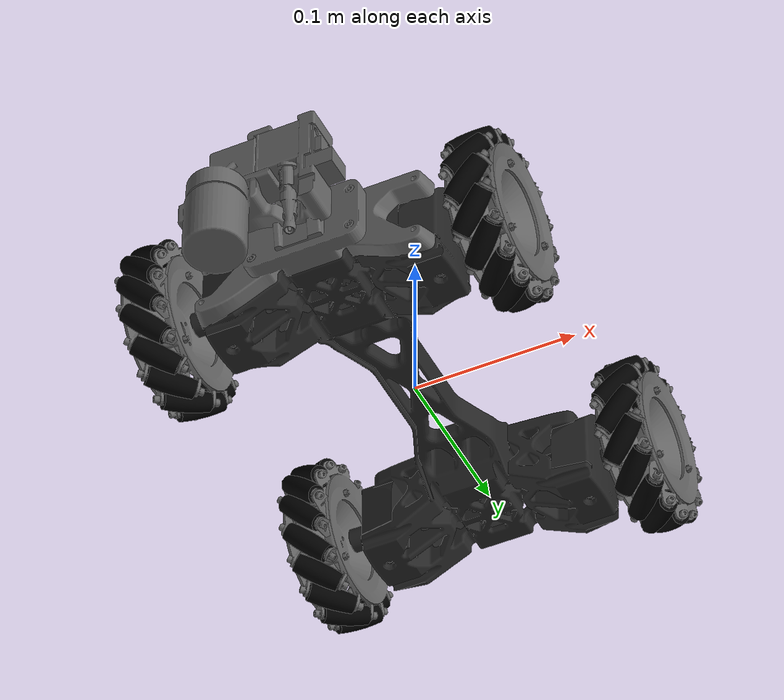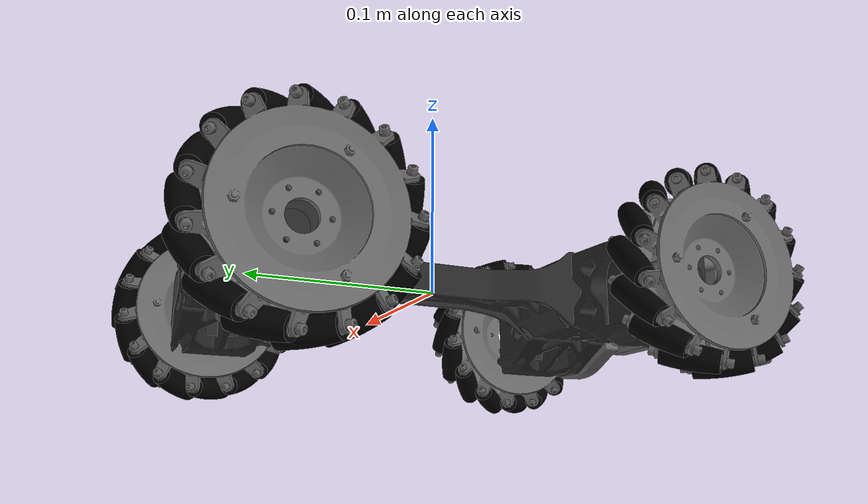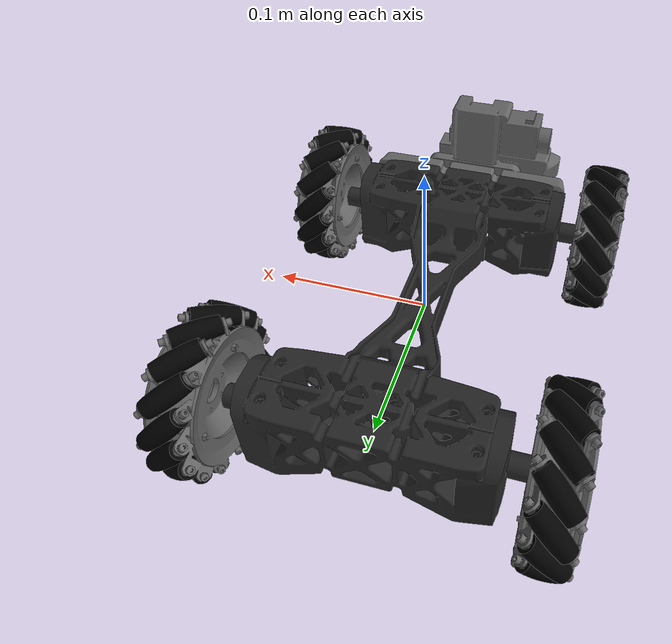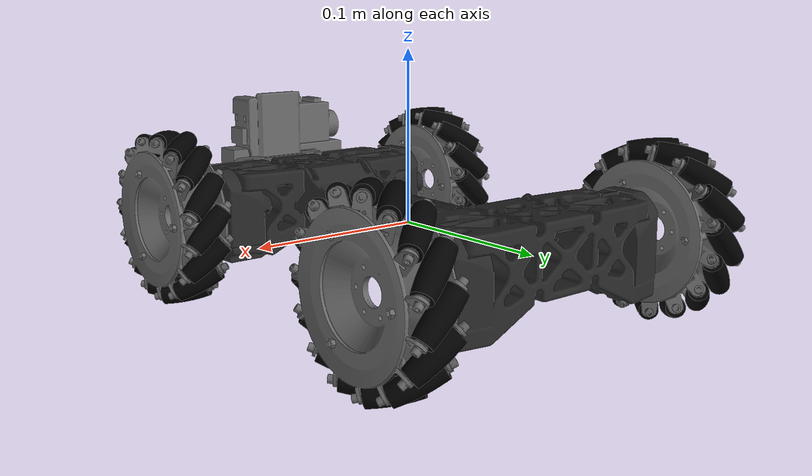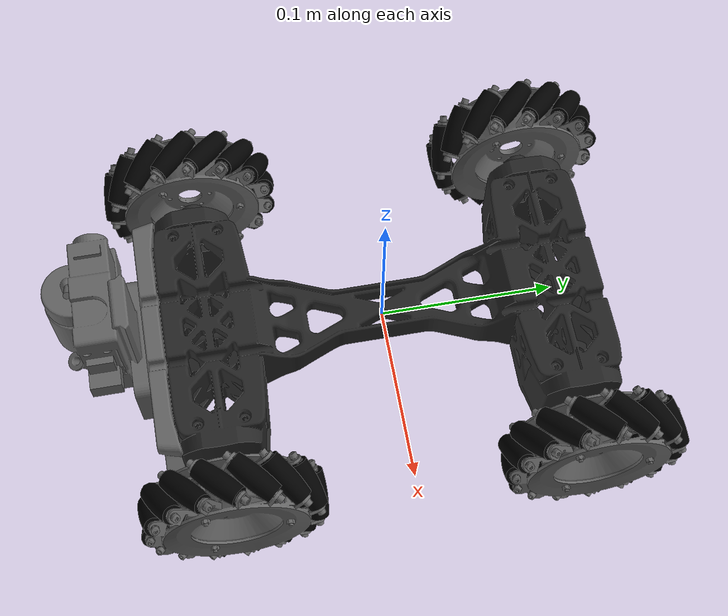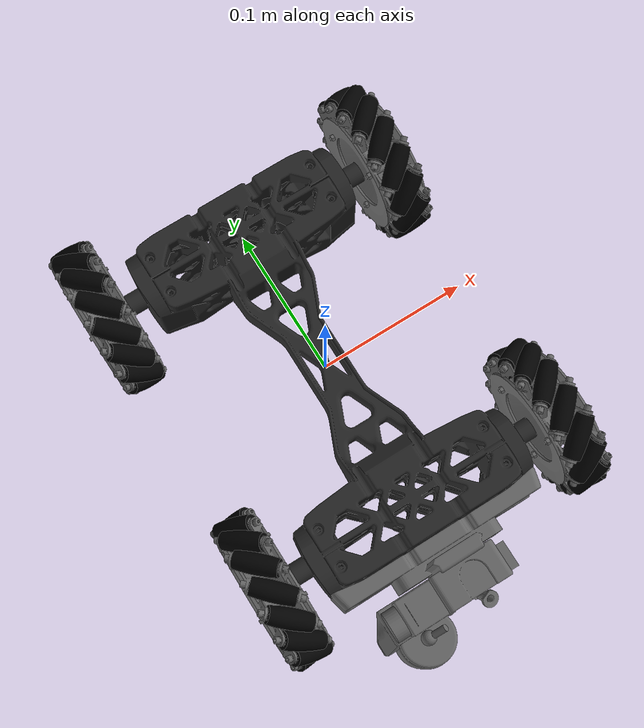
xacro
<?xml version="1.0"?>
<robot name="rover" xmlns:xacro="http://ros.org/wiki/xacro">

  <xacro:property name="PI" value="3.1415926535897931" />

  <xacro:property name="wheel_radius" value="${102.041016 / 2 * 0.001}" />
  <xacro:property name="wheel_width" value="${45.538025 * 0.001}" />

  <xacro:property name="wheel_shaft_radius" value="${5.0 * 0.001}" />
  <xacro:property name="wheel_shaft_length" value="${37.585724 * 0.001}" />

  <material name="black"><color rgba="0.15 0.15 0.15 1.0" /></material>
  <material name="light_grey"><color rgba="0.4 0.4 0.4 1.0" /></material>

   <xacro:macro name="box_inertia" params="m w h d">
    <inertial>
      <origin xyz="0 0 0" rpy="${pi/2} 0 ${pi/2}"/>
      <mass value="${m}"/>
      <inertia ixx="${(m/12) * (h*h + d*d)}" ixy="0.0" ixz="0.0" iyy="${(m/12) * (w*w + d*d)}" iyz="0.0" izz="${(m/12) * (w*w + h*h)}"/>
    </inertial>
  </xacro:macro>

  <xacro:macro name="cylinder_inertia" params="m r h">
    <inertial>
      <origin xyz="0 0 0" rpy="${pi/2} 0 0" />
      <mass value="${m}"/>
      <inertia ixx="${(m/12) * (3*r*r + h*h)}" ixy = "0" ixz = "0" iyy="${(m/12) * (3*r*r + h*h)}" iyz = "0" izz="${(m/2) * (r*r)}"/>
    </inertial>
  </xacro:macro>

  <xacro:macro name="sphere_inertia" params="m r">
    <inertial>
      <mass value="${m}"/>
      <inertia ixx="${(2/5) * m * (r*r)}" ixy="0.0" ixz="0.0" iyy="${(2/5) * m * (r*r)}" iyz="0.0" izz="${(2/5) * m * (r*r)}"/>
    </inertial>
  </xacro:macro>

  <xacro:include filename="$(find mecanum_model)/urdf/s1-based-rover.gazebo" />
  <xacro:include filename="$(find mecanum_model)/urdf/mecanum/mecanum_wheel_macro.xacro" />

  <link name="world"></link>

  <joint name="fixed" type="fixed">
    <parent link="world"/>
    <child link="base_footprint"/>
  </joint>

  <link name="base_footprint">
  </link>

  <joint name="chassis_joint" type="fixed">
    <origin xyz="0 0 0.0" rpy="0 0 0" />
    <parent link="base_footprint"/>
    <child link="chassis" />
 </joint>

  <link name="chassis">
    <visual>
      <geometry>
        <mesh filename="file://$(find mecanum_model)/meshes/visual/chassis.stl" scale="0.001 0.001 0.001"/>
       </geometry>
       <material name="black" />
    </visual>
    <collision>
      <origin rpy="0 0 0" xyz="0 0 0"/>
      <geometry>
	      <box size="${148.399536 * 0.001} ${252.206665 * 0.001} ${55.450001 * 0.001}"/>
      </geometry>
    </collision>
    <xacro:box_inertia m="10.0" w="${148.399536 * 0.001}" d="${252.206665 * 0.001}" h="${55.450001 * 0.001}"/>
  </link>

  <joint name="sprayer_joint" type="fixed">
   <origin xyz="-0.003 -0.14 0.005" rpy="0 0 0" />
   <parent link="chassis"/>
   <child link="sprayer_assembly" />
 </joint>

 <link name="sprayer_assembly">
    <visual>
      <geometry>
        <mesh filename="file://$(find mecanum_model)/meshes/visual/sprayer_assembly.stl" scale="0.001 0.001 0.001"/>
       </geometry>
       <material name="light_grey" />
    </visual>
    <collision>
      <origin xyz="0 -0.02 0.013" rpy="0 0 0" />
      <geometry>
        <box size="${144.179398 * 0.001} ${69.498428 * 0.001} ${96.728165 * 0.001}"/>
      </geometry>
    </collision>
    <xacro:box_inertia m="1.0" w="${144.179398 * 0.001}" d="${69.498428 * 0.001}" h="${96.728165 * 0.001}"/>
  </link>

  <joint name="wheel1_shaft_joint" type="continuous">
     <origin xyz="-0.065 0.1 0.0" rpy="0 0 0" />

      <axis xyz="1 0 0"/>

     <parent link="chassis"/>
     <child link="wheel1_shaft" />
  </joint>

  <link name="wheel1_shaft">
   <visual>
     <origin xyz="0 0 0.0" rpy="0 0 0" />
     <geometry>
       <mesh filename="file://$(find mecanum_model)/meshes/visual/wheel_shaft_min.stl" scale="0.001 0.001 0.001"/>
     </geometry>
     <material name="black" />
   </visual>
    <collision>
      <origin rpy="${PI/2} 0 0" xyz="0 0 0"/>
      <geometry>
        <cylinder length="${wheel_shaft_length}" radius="${wheel_shaft_radius}" />
      </geometry>
    </collision>
    <xacro:cylinder_inertia m="1.0" r="${wheel_shaft_radius}" h="${wheel_shaft_length}"/>
 </link>

 <joint name="wheel1_wheel_joint" type="fixed">
   <origin xyz="-0.035 0 0" rpy="0 0 0" />

   <parent link="wheel1_shaft"/>
   <child link="front_left_wheel_link" />
 </joint>

  <xacro:mecanum_wheel name="front_left"  side="-1" interface="hardware_interface/EffortJointInterface"/>

  <joint name="wheel2_shaft_joint" type="continuous">
    <origin xyz="0.065 0.1 0.0" rpy="0 0 0" />

    <axis xyz="1 0 0"/>

    <parent link="chassis"/>
    <child link="wheel2_shaft" />
  </joint>

  <link name="wheel2_shaft">
   <visual>
     <origin xyz="0 0 0.0" rpy="0 0 0" />
     <geometry>
       <mesh filename="file://$(find mecanum_model)/meshes/visual/wheel_shaft_max.stl" scale="0.001 0.001 0.001"/>
     </geometry>
     <material name="black" />
   </visual>
    <collision>
      <origin rpy="${PI/2} 0 0" xyz="0 0 0"/>
      <geometry>
        <cylinder length="${wheel_shaft_length}" radius="${wheel_shaft_radius}" />
      </geometry>
    </collision>
    <xacro:cylinder_inertia m="1.0" r="${wheel_shaft_radius}" h="${wheel_shaft_length}"/>
 </link>

 <joint name="wheel2_wheel_joint" type="fixed">
   <origin xyz="0.035 0 0" rpy="0 0 0" />

   <parent link="wheel2_shaft"/>
   <child link="front_right_wheel_link" />
 </joint>

 <xacro:mecanum_wheel name="front_right"  side="1" interface="hardware_interface/EffortJointInterface"/>

   <joint name="wheel3_shaft_joint" type="continuous">
     <origin xyz="0.065 -0.1 0.0" rpy="0 0 0" />

    <axis xyz="1 0 0"/>

     <parent link="chassis"/>
     <child link="wheel3_shaft" />
  </joint>

  <link name="wheel3_shaft">
   <visual>
     <origin xyz="0 0 0.0" rpy="0 0 0" />
     <geometry>
       <mesh filename="file://$(find mecanum_model)/meshes/visual/wheel_shaft_max.stl" scale="0.001 0.001 0.001"/>
     </geometry>
     <material name="black" />
   </visual>
   <collision>
      <origin rpy="${PI/2} 0 0" xyz="0 0 0"/>
      <geometry>
        <cylinder length="${wheel_shaft_length}" radius="${wheel_shaft_radius}" />
      </geometry>
    </collision>
    <xacro:cylinder_inertia m="1.0" r="${wheel_shaft_radius}" h="${wheel_shaft_length}"/>
 </link>

 <joint name="wheel3_wheel_joint" type="fixed">
   <origin xyz="0.035 0 0" rpy="0 0 0" />

   <parent link="wheel3_shaft"/>
   <child link="rear_right_wheel_link" />
 </joint>

  <xacro:mecanum_wheel name="rear_right"  side="1" interface="hardware_interface/EffortJointInterface"/>

   <joint name="wheel4_shaft_joint" type="continuous">
     <origin xyz="-0.065 -0.1 0.0" rpy="0 0 0" />

      <axis xyz="1 0 0"/>

     <parent link="chassis"/>
     <child link="wheel4_shaft" />
  </joint>

  <link name="wheel4_shaft">
   <visual>
     <origin xyz="0 0 0.0" rpy="0 0 0" />
     <geometry>
       <mesh filename="file://$(find mecanum_model)/meshes/visual/wheel_shaft_min.stl" scale="0.001 0.001 0.001"/>
     </geometry>
     <material name="black" />
   </visual>
    <collision>
      <origin rpy="${PI/2} 0 0" xyz="0 0 0"/>
      <geometry>
        <cylinder length="${wheel_shaft_length}" radius="${wheel_shaft_radius}" />
      </geometry>
    </collision>
    <xacro:cylinder_inertia m="1.0" r="${wheel_shaft_radius}" h="${wheel_shaft_length}"/>
 </link>

 <joint name="wheel4_wheel_joint" type="fixed">
   <origin xyz="-0.035 0 0" rpy="0 0 0" />

   <parent link="wheel4_shaft"/>
   <child link="rear_left_wheel_link" />
 </joint>

   <xacro:mecanum_wheel name="rear_left"  side="-1" interface="hardware_interface/EffortJointInterface"/>

</robot>

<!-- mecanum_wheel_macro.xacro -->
<robot name="mecanum_wheel" xmlns:xacro="http://ros.org/wiki/xacro">

  <xacro:include filename="$(find mecanum_model)/urdf/mecanum/wheel.xacro" />
  <xacro:include filename="$(find mecanum_model)/urdf/mecanum/rollers.xacro"  />

  <xacro:macro name="mecanum_wheel" params="name side interface">

    <xacro:wheel_link name="${name}" side="${side}" />
    <xacro:rollers_link name="${name}" side="${side}" />

    <transmission name="${name}_wheel_trans">
      <type>transmission_interface/SimpleTransmission</type>
      <joint name="${name}_wheel_joint">
        <hardwareInterface>${interface}</hardwareInterface>
      </joint>
      <actuator name="${name}_wheel_motor">
        <hardwareInterface>${interface}</hardwareInterface>
        <mechanismReduction>1</mechanismReduction>
      </actuator>
    </transmission>

  </xacro:macro>

</robot>

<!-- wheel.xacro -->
<robot name="wheel" xmlns:xacro="http://www.ros.org/wiki/xacro">

  <xacro:macro name="wheel_link" params="name side">
    <link name="${name}_wheel_link">
      <visual>
        <origin xyz="0 0 0" rpy="0 0 0" />
        <geometry>
          <mesh filename="file://$(find mecanum_model)/meshes/visual/wheel.dae" scale="${side * 0.001} 0.001 0.001" />
        </geometry>
      </visual>
      <collision>
        <geometry>
          <mesh filename="file://$(find mecanum_model)/meshes/collision/wheel.stl" scale="${side * 0.001} 0.001 0.001" />
        </geometry>
      </collision>
      <inertial>
        <origin xyz="0 0 0" />
        <mass value="1.0" />
        <inertia ixx="0.042025" ixy="0.0" ixz="0.0"
                iyy="0.024279" iyz="0.0"
                izz="0.024279" />
      </inertial>
    </link>

    <gazebo reference="${name}_wheel_link">
      <mu1 value="0.6"/>
      <mu2 value="0.6"/>
      <kp value="10000000.0" />
      <kd value="1.0" />
      <fdir1 value="0 1 0"/>
    </gazebo>

  </xacro:macro>

</robot>

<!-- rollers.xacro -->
<robot name="wheel" xmlns:xacro="http://www.ros.org/wiki/xacro">

  <xacro:property name="scaling_factor" value="0.04475" />
  <xacro:macro name="roller_origin" params="th side" >

    <xacro:if value="${side==1}">
      <origin xyz="0 ${scaling_factor*cos(th)} ${scaling_factor*sin(th)}" rpy="${atan(-tan(th)*sqrt(2.0))} ${asin(cos(th)/sqrt(2.0))} ${atan(sin(th))}"/>
    </xacro:if>

    <xacro:if value="${side==-1}">
      <origin xyz="0 ${scaling_factor*cos(th)} ${scaling_factor*sin(th)}" rpy="${atan(-tan(th)*sqrt(2.0))} ${asin(-cos(th)/sqrt(2.0))} ${atan(-sin(th))}"/>
    </xacro:if>

  </xacro:macro>

  <xacro:macro name="roller_loop" params="name side num loop" >

    <xacro:if value="${loop}">

      <link name="${name}_roller${loop}_link">
        <visual>
          <origin xyz="0 0 0" rpy="0 0 0" />
          <geometry>
            <mesh filename="file://$(find mecanum_model)/meshes/visual/roller.dae" scale="0.001 0.001 0.001" />
          </geometry>
        </visual>
        <collision>
          <geometry>
            <mesh filename="file://$(find mecanum_model)/meshes/collision/roller.stl" scale="0.001 0.001 0.001" />
          </geometry>
        </collision>
        <inertial>
          <origin xyz="0 0 0" />
          <mass value="0.15" />
          <inertia ixx="0.00024000" ixy="0.0" ixz="0.0"
                  iyy="0.00076000" iyz="0.0"
                  izz="0.00076000" />
        </inertial>
      </link>

      <joint name="${name}_roller${loop}_joint" type="continuous">
        <xacro:roller_origin th="${radians(360/num*(loop-1))}" side="${side}"/>
        <parent link="${name}_wheel_link" />
        <child link="${name}_roller${loop}_link" />
        <dynamics damping="0.001" friction="0.0001" />
      </joint>

      <transmission name="$${name}_roller${loop}_trans">
        <type>transmission_interface/SimpleTransmission</type>
        <joint name="${name}_roller${loop}_joint">
          <hardwareInterface>hardware_interface/EffortJointInterface</hardwareInterface>
        </joint>
        <actuator name="${name}_roller${loop}_motor">
          <hardwareInterface>hardware_interface/EffortJointInterface</hardwareInterface>
          <mechanismReduction>1</mechanismReduction>
        </actuator>
      </transmission>

      <gazebo reference="${name}_roller${loop}_link">
        <mu1 value="0.8"/>
        <mu2 value="0.8"/>
        <kp value="10000000.0" />
        <kd value="100.0" />
        <fdir1 value="0 1 0"/>
      </gazebo>

      <xacro:roller_loop name="${name}" side="${side}" num="${num}" loop="${loop - 1}" />

    </xacro:if>

  </xacro:macro>

  <xacro:macro name="rollers_link" params="name side">
    <xacro:roller_loop name="${name}" side="${side}" num="15" loop="15" />
  </xacro:macro>

</robot>
